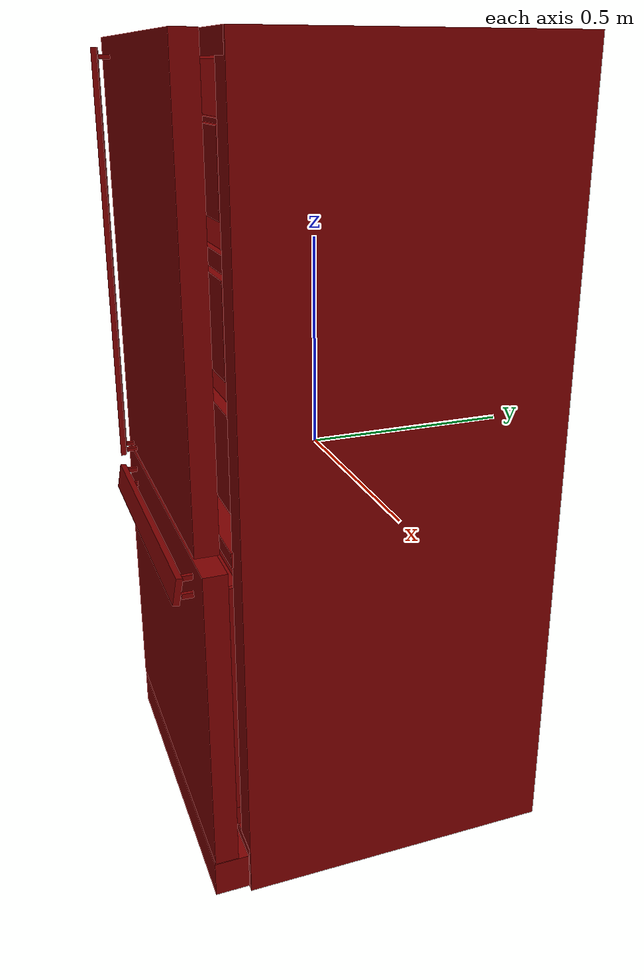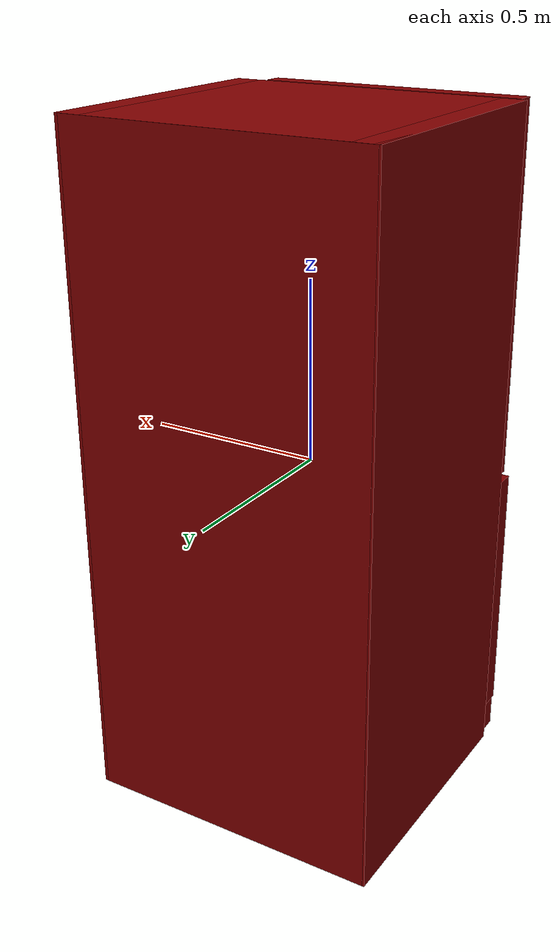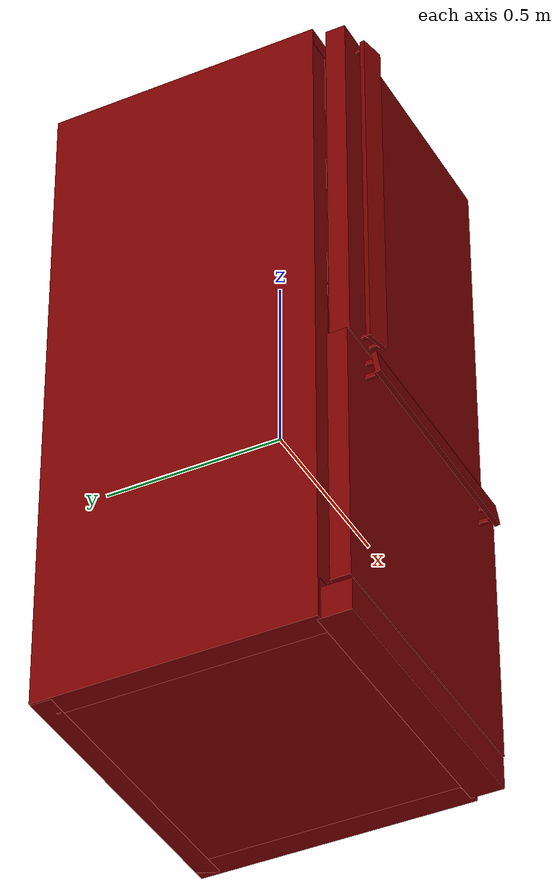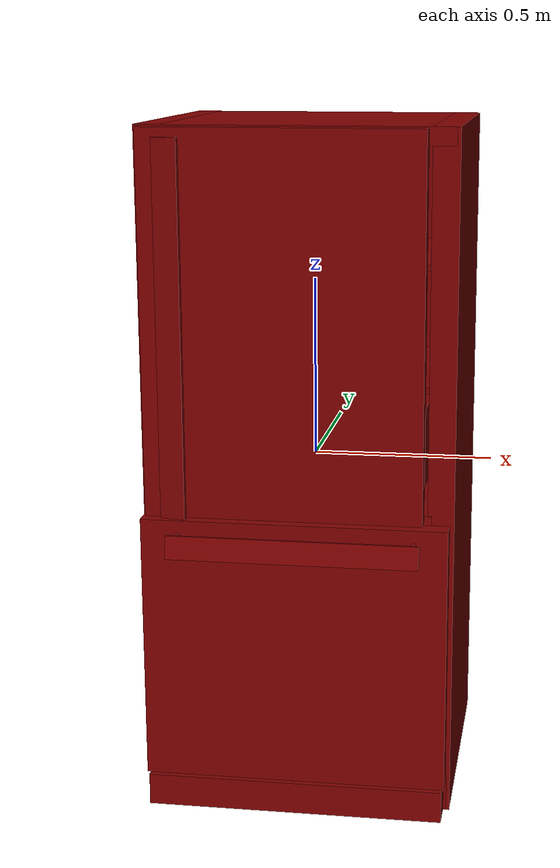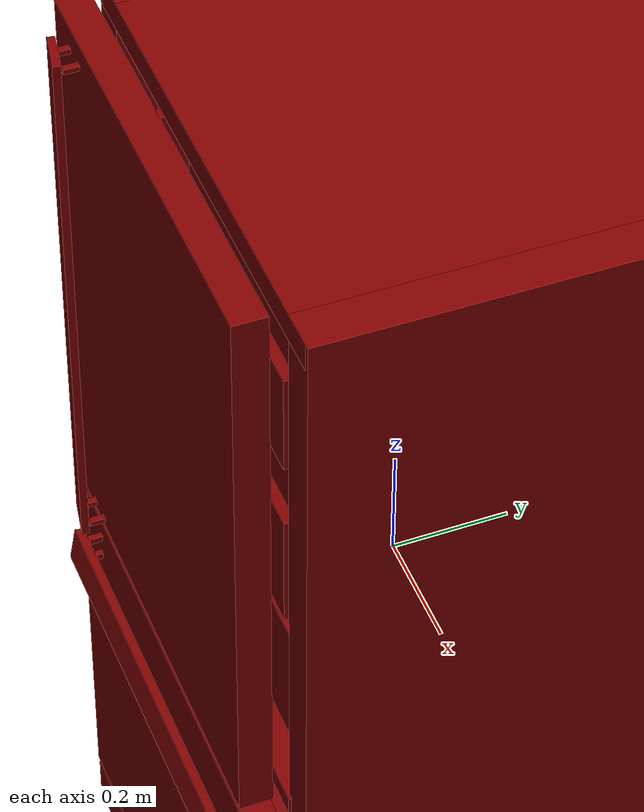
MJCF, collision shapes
<?xml version='1.0' encoding='UTF-8'?>
<mujoco model="model">
  <option timestep="0.002" gravity="0.0 0.0 -9.81"/>
  <compiler angle="radian"/>
  <asset>
    <mesh file="visuals/freezer0.obj" name="freezer0_vis"/>
    <mesh file="visuals/fridge_door.obj" name="fridge_door_vis"/>
    <mesh file="visuals/fridge_door_Clear.obj" name="fridge_door_Clear_vis"/>
    <mesh file="visuals/fridge_drawer0.obj" name="fridge_drawer0_vis"/>
    <mesh file="visuals/Body001.obj" name="Body001_vis"/>
    <mesh file="visuals/Body001_Clear.obj" name="Body001_Clear_vis"/>
    <texture file="visuals/T_BC001.png" name="Body001_material" type="2d"/>
    <material name="Body001_material" rgba="1 1 1 1.0" texture="Body001_material" shininess="0.1" specular="5"/>
    <texture file="visuals/T_BC001.png" name="freezer0_material" type="2d"/>
    <material name="freezer0_material" rgba="1 1 1 1.0" texture="freezer0_material" shininess="0.1" specular="5"/>
    <texture file="visuals/T_BC001.png" name="fridge_door_material" type="2d"/>
    <material name="fridge_door_material" rgba="1 1 1 1.0" texture="fridge_door_material" shininess="0.1" specular="5"/>
    <material name="fridge_door_Clear_material" rgba="0.665257453918457 0.665257453918457 0.665257453918457 0.699999988079071" shininess="0.5" specular="0.3103448502657381"/>
    <texture file="visuals/T_BC001.png" name="fridge_drawer0_material" type="2d"/>
    <material name="fridge_drawer0_material" rgba="1 1 1 1.0" texture="fridge_drawer0_material" shininess="0.1" specular="5"/>
    <material name="Body001_Clear_material" rgba="0.665257453918457 0.665257453918457 0.665257453918457 0.699999988079071" shininess="0.5" specular="0.3103448502657381"/>
  </asset>
  <default>
    <default class="visual">
      <geom conaffinity="0" contype="0" group="1" type="mesh"/>
    </default>
    <default class="collision">
      <geom group="0" rgba="0.5 0 0 0.5"/>
    </default>
    <default class="spawn">
      <geom group="0" rgba="1 1 1 0.5" contype="0" conaffinity="0"/>
      <site group="0" rgba="1 1 1 0.5"/>
    </default>
    <default class="region">
      <geom group="1" conaffinity="0" contype="0" rgba="0 1 0 0"/>
    </default>
  </default>
  <worldbody>
    <body>
      <body name="object">
        <geom mesh="Body001_vis" type="mesh" solimp="0.998 0.998 0.001" solref="0.001 1" friction="0.95 0.3 0.1" class="visual" material="Body001_material"/>
        <geom class="collision" type="box" pos="-0.39124003052711487 0.06275410205125809 8.032657206058502e-08" size="0.034012388437986374 0.3773769736289978 0.9352431893348694" quat="1.0 0.0 0.0 0.0"/>
        <geom class="collision" type="box" pos="0.3865000903606415 0.06275410950183868 8.032657206058502e-08" size="0.035734888166189194 0.37737753987312317 0.9352431893348694" quat="1.0 0.0 0.0 0.0"/>
        <geom class="collision" type="box" pos="-0.003005377249792218 0.06278446316719055 0.9109719395637512" size="0.4162082374095917 0.3774084448814392 0.024271223694086075" quat="1.0 0.0 0.0 0.0"/>
        <geom class="collision" type="box" pos="-0.0014342060312628746 0.09866835922002792 0.5628315210342407" size="0.3656265139579773 0.30178096890449524 0.008194826543331146" quat="1.0 0.0 0.0 0.0"/>
        <geom class="collision" type="box" pos="-0.003005377249792218 0.4121619164943695 -0.00014821236254647374" size="0.4162082374095917 0.02804042212665081 0.935094952583313" quat="1.0 0.0 0.0 0.0"/>
        <geom class="collision" type="box" pos="-0.003005377249792218 0.06275410950183868 -0.8784809708595276" size="0.4162082374095917 0.37737980484962463 0.056762177497148514" quat="1.0 0.0 0.0 0.0"/>
        <geom class="collision" type="box" pos="-0.003005377249792218 -0.3495185971260071 -0.8912568688392639" size="0.4084376096725464 0.045058876276016235 0.043986253440380096" quat="1.0 0.0 0.0 0.0"/>
        <geom class="collision" type="box" pos="-0.0008896092185750604 0.09849430620670319 0.23272299766540527" size="0.36309075355529785 0.30142179131507874 0.008352463133633137" quat="1.0 0.0 0.0 0.0"/>
        <geom class="collision" type="box" pos="-0.001195636112242937 0.059925638139247894 -0.10092896223068237" size="0.3633967638015747 0.3794633746147156 0.017055664211511612" quat="1.0 0.0 0.0 0.0"/>
        <body name="freezer0">
          <geom class="region" name="reg_freezer0" type="box" pos="0.0033690333366394043 0.028826504945755005 -0.46035464107990265" size="0.32989047265052795 0.3241205642223358 0.28335195577144623"/>
          <joint axis="0.0 -1.0 0.0" pos="-7.969141006469727e-05 -0.03420105576515198 -0.4718346893787384" limited="true" name="freezer0_door_joint" range="0.0 0.45" type="slide" damping="1" frictionloss="1" armature=".01" stiffness="0.05"/>
          <geom mesh="freezer0_vis" type="mesh" solimp="0.998 0.998 0.001" solref="0.001 1" friction="0.95 0.3 0.1" class="visual" material="freezer0_material"/>
          <geom class="collision" type="box" pos="-0.0011914935894310474 0.36576756834983826 -0.4803870618343353" size="0.3418252170085907 0.0076783024705946445 0.3114679157733917" quat="1.0 0.0 0.0 0.0"/>
          <geom class="collision" type="box" pos="-0.00032378174364566803 0.01753641478717327 -0.7738029956817627" size="0.3507637679576874 0.35097435116767883 0.023357970640063286" quat="1.0 0.0 0.0 0.0"/>
          <geom class="collision" type="box" pos="-0.3443620204925537 0.0170903243124485 -0.48205456137657166" size="0.011331324465572834 0.35257017612457275 0.30979910492897034" quat="1.0 0.0 0.0 0.0"/>
          <geom class="collision" type="box" pos="0.34440237283706665 0.013876717537641525 -0.4821096360683441" size="0.005694916937500238 0.34935566782951355 0.30974334478378296" quat="1.0 0.0 0.0 0.0"/>
          <geom class="collision" type="box" pos="-0.0018570255488157272 -0.3674286901950836 -0.4704700708389282" size="0.41414013504981995 0.027148786932229996 0.36812254786491394" quat="1.0 0.0 0.0 0.0" name="freezer0_door_main"/>
          <geom class="collision" type="box" pos="-0.0011914935894310474 -0.32020729780197144 -0.48247089982032776" size="0.34181952476501465 0.01993451453745365 0.30938008427619934" quat="1.0 0.0 0.0 0.0"/>
          <geom class="collision" type="box" pos="0.0007595455390401185 -0.43163663148880005 -0.16591814160346985" size="0.031590551137924194 0.007566715590655804 0.3390676975250244" quat="0.7045928239822388 -0.05957247316837311 0.7045928835868835 -0.059572722762823105" name="freezer0_door_handle_main"/>
          <geom class="collision" type="box" pos="-0.31508609652519226 -0.40705639123916626 -0.14255252480506897" size="0.004909777082502842 0.014283010736107826 0.006065897643566132" quat="1.0 0.0 0.0 0.0" name="freezer0_door_handle_1"/>
          <geom class="collision" type="box" pos="-0.315695196390152 -0.40705639123916626 -0.185245081782341" size="0.004909771028906107 0.01428298745304346 0.006065891589969397" quat="1.0 0.0 0.0 0.0" name="freezer0_door_handle_2"/>
          <geom class="collision" type="box" pos="0.322441965341568 -0.40705639123916626 -0.185245081782341" size="0.004909764975309372 0.01428296323865652 0.006065886002033949" quat="1.0 0.0 0.0 0.0" name="freezer0_door_handle_4"/>
          <geom class="collision" type="box" pos="0.3225248157978058 -0.40705639123916626 -0.14255252480506897" size="0.004909759387373924 0.014282939955592155 0.006065879948437214" quat="1.0 0.0 0.0 0.0" name="freezer0_door_handle_3"/>
        </body>
        <body name="fridge_door">
          <joint axis="0.0 0.0 1.0" pos="0.3793938457965851 -0.3540734648704529 0.4236448109149933" limited="true" name="fridge_door_joint" range="0.0 1.5707963267948966" type="hinge" damping="1" frictionloss="1" armature=".01" stiffness="0.05"/>
          <geom mesh="fridge_door_vis" type="mesh" solimp="0.998 0.998 0.001" solref="0.001 1" friction="0.95 0.3 0.1" class="visual" material="fridge_door_material"/>
          <geom class="collision" type="box" pos="-0.02830483205616474 -0.3667275309562683 0.4207412898540497" size="0.3724071681499481 0.02750129997730255 0.5125834345817566" quat="1.0 0.0 0.0 0.0" name="fridge_door_main"/>
          <geom class="collision" type="box" pos="-0.3156786859035492 -0.42462262511253357 0.4115767180919647" size="0.03464058041572571 0.006546389311552048 0.4979086220264435" quat="0.9950294494628906 0.0 0.0 -0.09958113729953766" name="fridge_door_handle_main"/>
          <geom class="collision" type="box" pos="0.004470821004360914 -0.22466114163398743 0.679015040397644" size="0.3040499687194824 0.008931159973144531 0.08751533925533295" quat="1.0 0.0 0.0 0.0"/>
          <geom class="collision" type="box" pos="0.008392981253564358 -0.2648013234138489 0.6015285849571228" size="0.2979090213775635 0.025822600349783897 0.009528214111924171" quat="1.0 0.0 0.0 0.0"/>
          <geom class="collision" type="box" pos="-0.2900031805038452 -0.26183050870895386 0.6784597635269165" size="0.010414899326860905 0.030324405059218407 0.08807030320167542" quat="1.0 0.0 0.0 0.0"/>
          <geom class="collision" type="box" pos="0.3001835346221924 -0.2610072195529938 0.6795481443405151" size="0.008546192198991776 0.029500847682356834 0.08698169142007828" quat="1.0 0.0 0.0 0.0"/>
          <geom class="collision" type="box" pos="-0.3363943099975586 -0.40705639123916626 -0.07539217919111252" size="0.0055083283223211765 0.01297001913189888 0.0044584632851183414" quat="1.0 0.0 0.0 0.0" name="fridge_door_handle_3"/>
          <geom class="collision" type="box" pos="-0.2937796711921692 -0.40705639123916626 -0.07539217919111252" size="0.0055083283223211765 0.01297001913189888 0.0044584632851183414" quat="1.0 0.0 0.0 0.0" name="fridge_door_handle_4"/>
          <geom class="collision" type="box" pos="-0.2937796711921692 -0.40705639123916626 0.8893352150917053" size="0.0055083283223211765 0.01297001913189888 0.0044584632851183414" quat="1.0 0.0 0.0 0.0" name="fridge_door_handle_2"/>
          <geom class="collision" type="box" pos="-0.3363943099975586 -0.40705639123916626 0.8893352150917053" size="0.0055083283223211765 0.01297001913189888 0.0044584632851183414" quat="1.0 0.0 0.0 0.0" name="fridge_door_handle_1"/>
          <geom class="collision" type="box" pos="0.004470821004360914 -0.297027587890625 0.679015040397644" size="0.3040454089641571 0.00893101654946804 0.08751440048217773" quat="1.0 0.0 0.0 0.0"/>
          <geom class="collision" type="box" pos="0.3001835346221924 -0.2610072195529938 0.37668514251708984" size="0.008546072989702225 0.029500039294362068 0.102000392973423" quat="1.0 0.0 0.0 0.0"/>
          <geom class="collision" type="box" pos="-0.2900031805038452 -0.26183050870895386 0.3755967915058136" size="0.010414756834506989 0.03032337874174118 0.10308877378702164" quat="1.0 0.0 0.0 0.0"/>
          <geom class="collision" type="box" pos="0.008392981253564358 -0.2648013234138489 0.28364649415016174" size="0.2979090213775635 0.02582157589495182 0.009528105147182941" quat="1.0 0.0 0.0 0.0"/>
          <geom class="collision" type="box" pos="0.004470821004360914 -0.297027587890625 0.3761520981788635" size="0.30404388904571533 0.008930969052016735 0.10253334045410156" quat="1.0 0.0 0.0 0.0"/>
          <geom class="collision" type="box" pos="0.004470821004360914 -0.22466114163398743 0.3761520981788635" size="0.3040435016155243 0.00893095787614584 0.10253318399190903" quat="1.0 0.0 0.0 0.0"/>
          <body name="fridge_door_Clear">
            <geom mesh="fridge_door_Clear_vis" type="mesh" solimp="0.998 0.998 0.001" solref="0.001 1" friction="0.95 0.3 0.1" class="visual" material="fridge_door_Clear_material"/>
            <geom class="collision" type="box" pos="0.004470821004360914 -0.22466114163398743 0.679015040397644" size="0.3040499687194824 0.008931159973144531 0.08751533925533295" quat="1.0 0.0 0.0 0.0"/>
            <geom class="collision" type="box" pos="0.008392981253564358 -0.2648013234138489 0.6015285849571228" size="0.2979090213775635 0.025822600349783897 0.009528214111924171" quat="1.0 0.0 0.0 0.0"/>
            <geom class="collision" type="box" pos="-0.2900031805038452 -0.26183050870895386 0.6784597635269165" size="0.010414899326860905 0.030324405059218407 0.08807030320167542" quat="1.0 0.0 0.0 0.0"/>
            <geom class="collision" type="box" pos="0.3001835346221924 -0.2610072195529938 0.6795481443405151" size="0.008546192198991776 0.029500847682356834 0.08698169142007828" quat="1.0 0.0 0.0 0.0"/>
            <geom class="collision" type="box" pos="0.004470821004360914 -0.297027587890625 0.679015040397644" size="0.3040454089641571 0.00893101654946804 0.08751440048217773" quat="1.0 0.0 0.0 0.0"/>
            <geom class="collision" type="box" pos="0.3001835346221924 -0.2610072195529938 0.37668514251708984" size="0.008546072989702225 0.029500039294362068 0.102000392973423" quat="1.0 0.0 0.0 0.0"/>
            <geom class="collision" type="box" pos="-0.2900031805038452 -0.26183050870895386 0.3755967915058136" size="0.010414756834506989 0.03032337874174118 0.10308877378702164" quat="1.0 0.0 0.0 0.0"/>
            <geom class="collision" type="box" pos="0.008392981253564358 -0.2648013234138489 0.28364649415016174" size="0.2979090213775635 0.02582157589495182 0.009528105147182941" quat="1.0 0.0 0.0 0.0"/>
            <geom class="collision" type="box" pos="0.004470821004360914 -0.297027587890625 0.3761520981788635" size="0.30404388904571533 0.008930969052016735 0.10253334045410156" quat="1.0 0.0 0.0 0.0"/>
            <geom class="collision" type="box" pos="0.004470821004360914 -0.22466114163398743 0.3761520981788635" size="0.3040435016155243 0.00893095787614584 0.10253318399190903" quat="1.0 0.0 0.0 0.0"/>
          </body>
        </body>
        <body name="fridge_drawer0">
          <geom class="region" name="reg_fridge_drawer0" type="box" pos="-0.005467638373374939 0.054861053824424744 0.05927177891135216" size="0.30402174389362335 0.2942383865118027 0.08639744094014168"/>
          <joint axis="0.0 -1.0 0.0" pos="-0.004472863860428333 0.04361245781183243 0.03509211167693138" limited="true" name="fridge_drawer0_joint" range="0.0 0.45" type="slide" damping="1" frictionloss="1" armature=".01" stiffness="0.05"/>
          <geom mesh="fridge_drawer0_vis" type="mesh" solimp="0.998 0.998 0.001" solref="0.001 1" friction="0.95 0.3 0.1" class="visual" material="fridge_drawer0_material"/>
          <geom class="collision" type="box" pos="-0.008878466673195362 -0.26074740290641785 0.04149266332387924" size="0.3227502405643463 0.013114437460899353 0.11588776111602783" quat="1.0 0.0 0.0 0.0"/>
          <geom class="collision" type="box" pos="-0.006832419894635677 0.36156195402145386 0.03806956112384796" size="0.32070332765579224 0.007769288029521704 0.1124643012881279" quat="1.0 0.0 0.0 0.0"/>
          <geom class="collision" type="box" pos="-0.006832419894635677 0.05114477872848511 -0.05606964975595474" size="0.3206806480884552 0.30506253242492676 0.02356884628534317" quat="1.0 0.0 0.0 0.0"/>
          <geom class="collision" type="box" pos="-0.32383376359939575 0.05109209567308426 0.03806973248720169" size="0.008129606954753399 0.3125889003276825 0.11246374994516373" quat="1.0 0.0 0.0 0.0"/>
          <geom class="collision" type="box" pos="0.31239116191864014 0.05109209567308426 0.038069818168878555" size="0.00828589964658022 0.31258800625801086 0.11246347427368164" quat="1.0 0.0 0.0 0.0"/>
        </body>
        <body name="Body001_Clear">
          <geom mesh="Body001_Clear_vis" type="mesh" solimp="0.998 0.998 0.001" solref="0.001 1" friction="0.95 0.3 0.1" class="visual" material="Body001_Clear_material"/>
          <geom class="collision" type="box" pos="-0.0014342060312628746 0.09866835922002792 0.5628315210342407" size="0.3656265139579773 0.30178096890449524 0.008194826543331146" quat="1.0 0.0 0.0 0.0"/>
          <geom class="collision" type="box" pos="-0.0008896092185750604 0.09849430620670319 0.23272299766540527" size="0.36309075355529785 0.30142179131507874 0.008352463133633137" quat="1.0 0.0 0.0 0.0"/>
        </body>
        <geom class="region" name="reg_fridge_shelf0" type="box" pos="-0.0036609023809432983 0.09046225994825363 0.3977571949362755" size="0.3480209687948227 0.2881340587735176 0.15164696222543717"/>
        <geom class="region" name="reg_fridge_shelf1" type="box" pos="-0.0036609023809432983 0.09046225994825363 0.7292585074901581" size="0.3480209687948227 0.2881340587735176 0.15291122889518738"/>
        <geom class="region" name="reg_main" type="box" pos="0.0 0.021010160446166992 0.0" size="0.42629571056365967 0.4201935360431671 0.9362431297302246"/>
      </body>
    </body>
  </worldbody>
  <actuator>
    <motor name="freezer0_door_joint_actuator" joint="freezer0_door_joint" gear="50"/>
    <motor name="fridge_door_joint_actuator" joint="fridge_door_joint" gear="50"/>
    <motor name="fridge_drawer0_joint_actuator" joint="fridge_drawer0_joint" gear="50"/>
  </actuator>
</mujoco>
